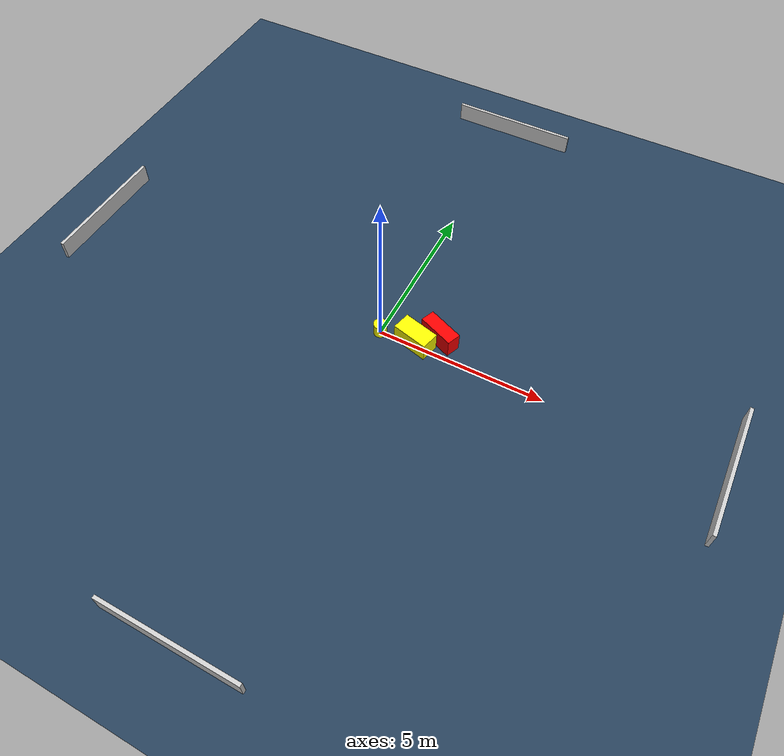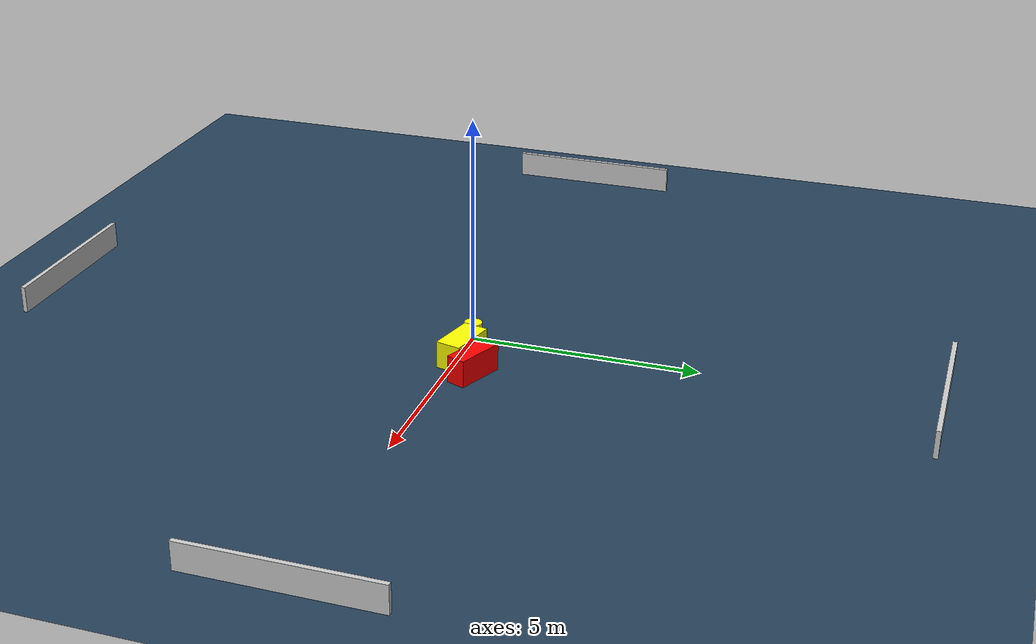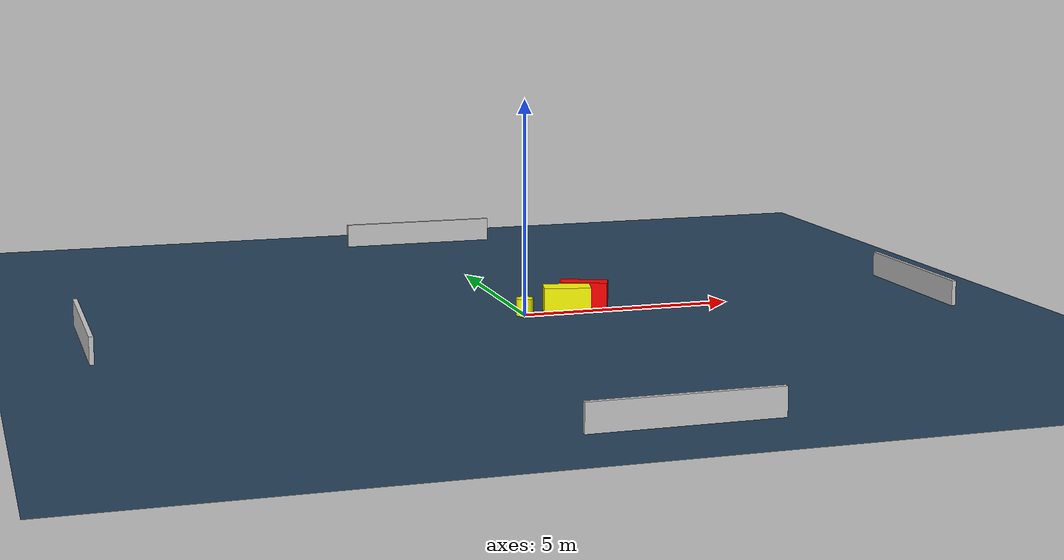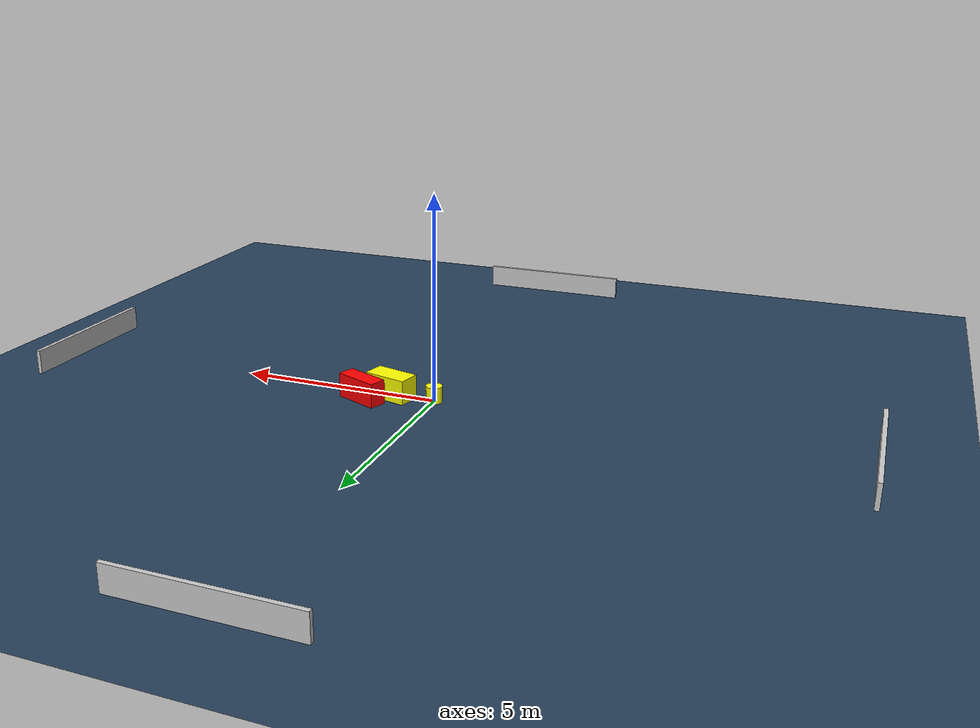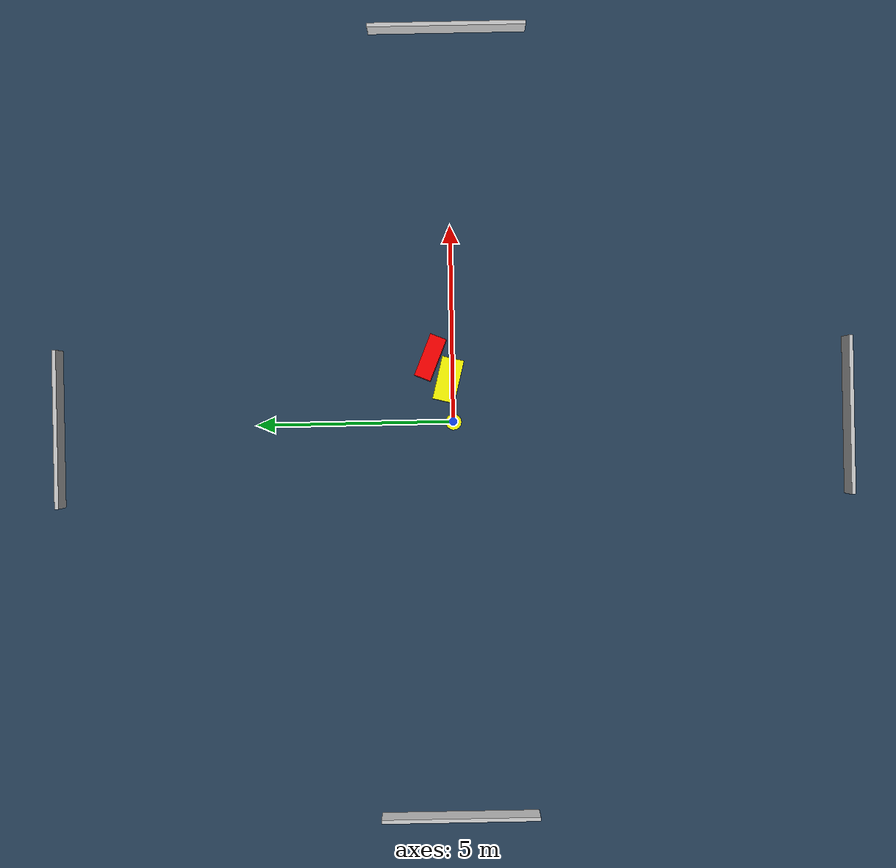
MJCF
<?xml version="1.0" ?>
<mujoco model="generated_environment">
  <option timestep="0.01" integrator="RK4" cone="elliptic"/>
  <default>
    <geom density="1"/>
  </default>
  <asset>
    <texture builtin="gradient" height="3072" name="skybox" rgb1="0.3 0.5 0.7" rgb2="0 0 0" type="skybox" width="512"/>
    <texture builtin="checker" height="300" name="groundplane" rgb1="0.2 0.3 0.4" rgb2="0.1 0.2 0.3" type="2d" width="300"/>
    <material name="groundplane" reflectance="0.2" texrepeat="5 5" texture="groundplane"/>
  </asset>
  <worldbody>
    <light dir="0 0 -1" directional="true" pos="0 0 1.5"/>
    <geom condim="3" friction="0.5 0.005 0.001" material="groundplane" name="floor" pos="0 0 0" size="0 0 0.05" type="plane"/>
    <body name="walls">
      <geom name="wall_1" condim="4" pos="-10.0 0.0 0.3" rgba="0.800000011920929 0.800000011920929 0.800000011920929 1.0" size="0.05 2.0 0.3" type="box"/>
      <geom name="wall_2" condim="4" pos="10.0 0.0 0.3" rgba="0.800000011920929 0.800000011920929 0.800000011920929 1.0" size="0.05 2.0 0.3" type="box"/>
      <geom name="wall_3" condim="4" pos="0.0 -10.0 0.3" rgba="0.800000011920929 0.800000011920929 0.800000011920929 1.0" size="2.0 0.05 0.3" type="box"/>
      <geom name="wall_4" condim="4" pos="0.0 10.0 0.3" rgba="0.800000011920929 0.800000011920929 0.800000011920929 1.0" size="2.0 0.05 0.3" type="box"/>
    </body>
    <body name="robot">
      <joint name="joint_x" type="slide" pos="0 0 0" axis="1 0 0"/>
      <joint name="joint_y" type="slide" pos="0 0 0" axis="0 1 0"/>
      <geom name="robot" type="cylinder" pos="0.0 0.0 0.2" size="0.2 0.2 0.0" mass="5.0" friction="1.0 0.005 0.0001" condim="4" rgba="1.0 1.0 0.0 1.0"/>
    </body>
    <body name="obstacle_1_movable">
      <geom name="obstacle_1_movable" condim="4" pos="1.0651252681071606 0.11429098599684004 0.3" euler="0 0 166.0084469688188" friction="0.0 0.005 0.001" rgba="1.0 1.0 0.0 1.0" size="0.5467529675697745 0.279420851300702 0.3" type="box" mass="0.1"/>
      <joint type="free"/>
    </body>
    <body name="obstacle_2_static">
      <geom name="obstacle_2_static" condim="4" pos="1.6364950594437921 0.5547063797295675 0.3" euler="0 0 337.6665788215791" friction="0.0 0.005 0.001" rgba="1.0 0.0 0.0 1.0" size="0.5572132268282529 0.21274408788563587 0.3" type="box"/>
    </body>
  </worldbody>
  <actuator>
    <motor name="actuator_x" joint="joint_x" gear="1" ctrlrange="-1 1"/>
    <motor name="actuator_y" joint="joint_y" gear="1" ctrlrange="-1 1"/>
  </actuator>
</mujoco>
